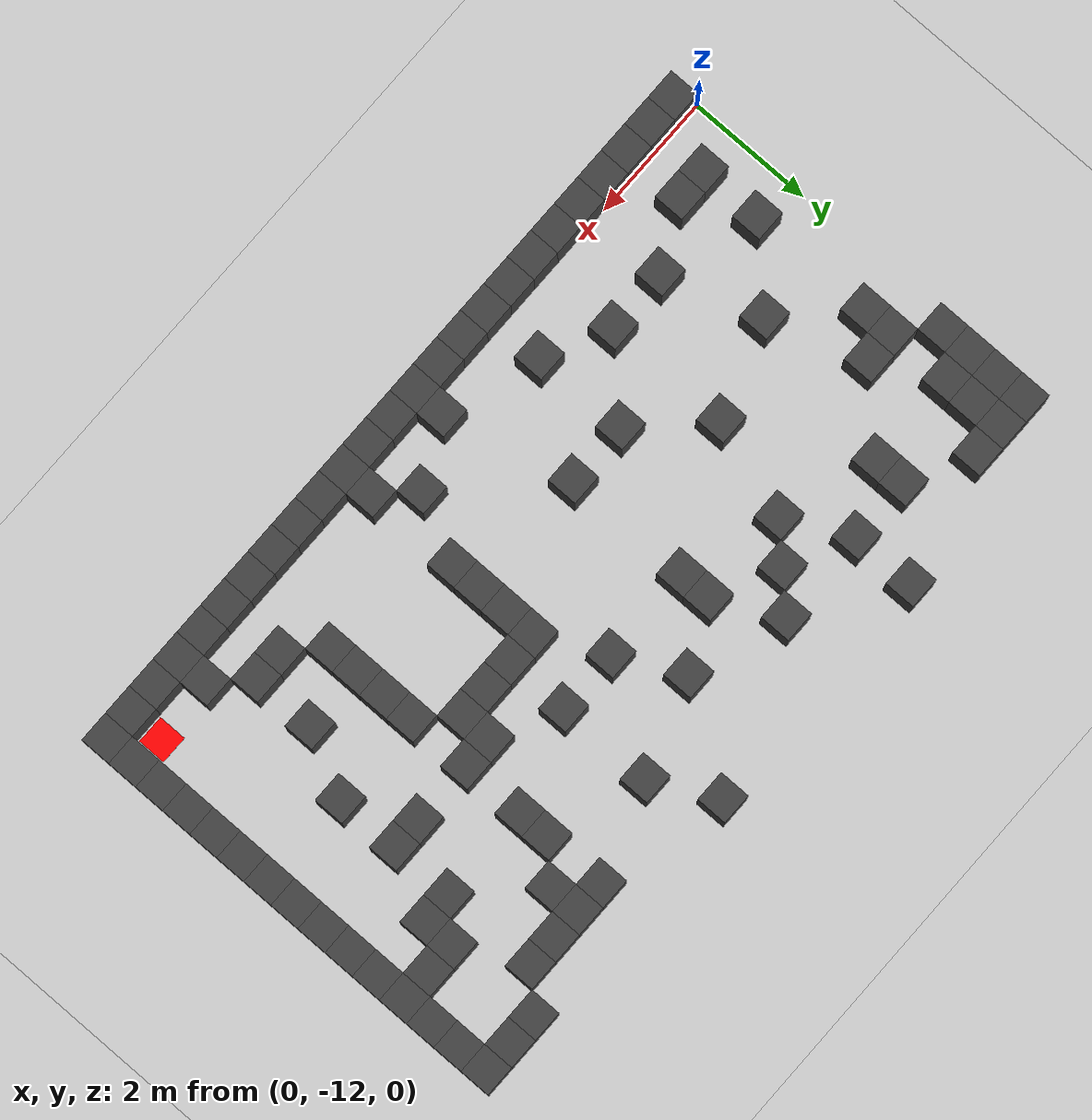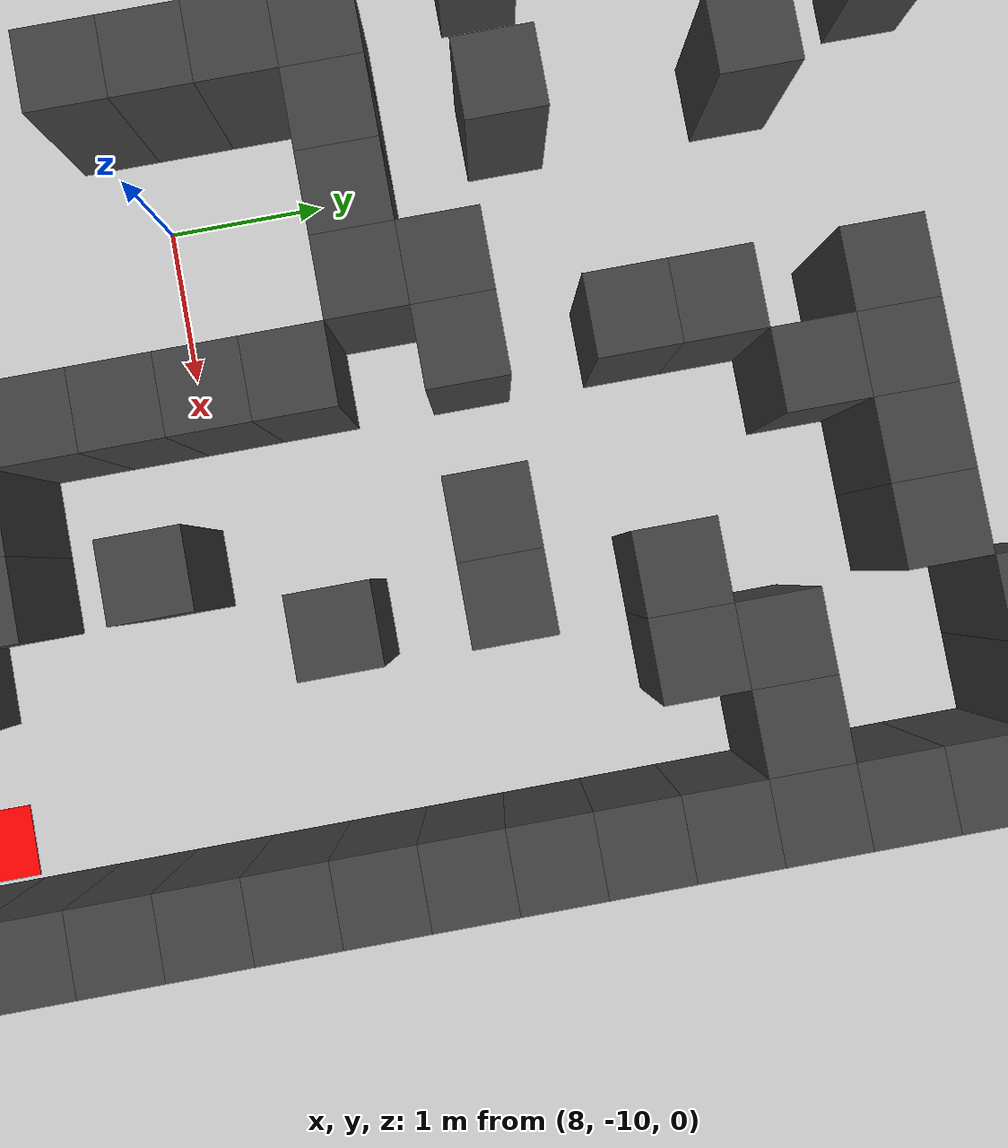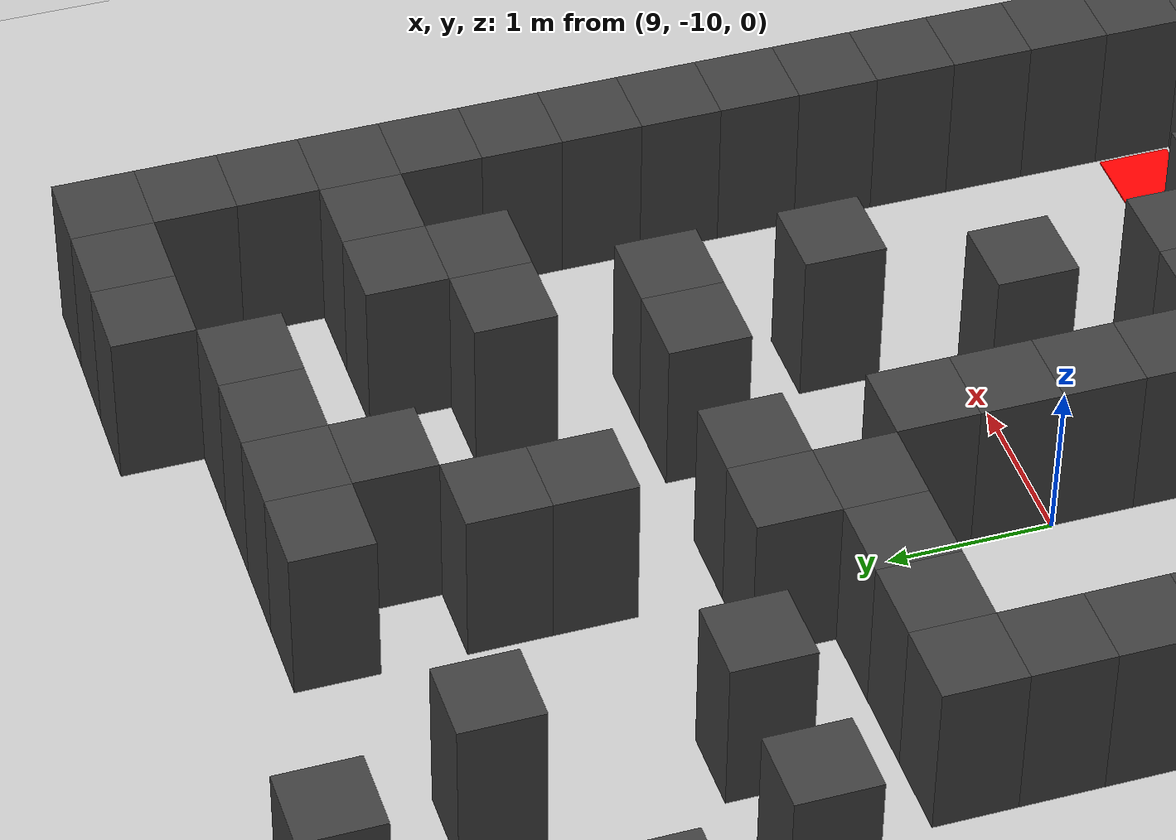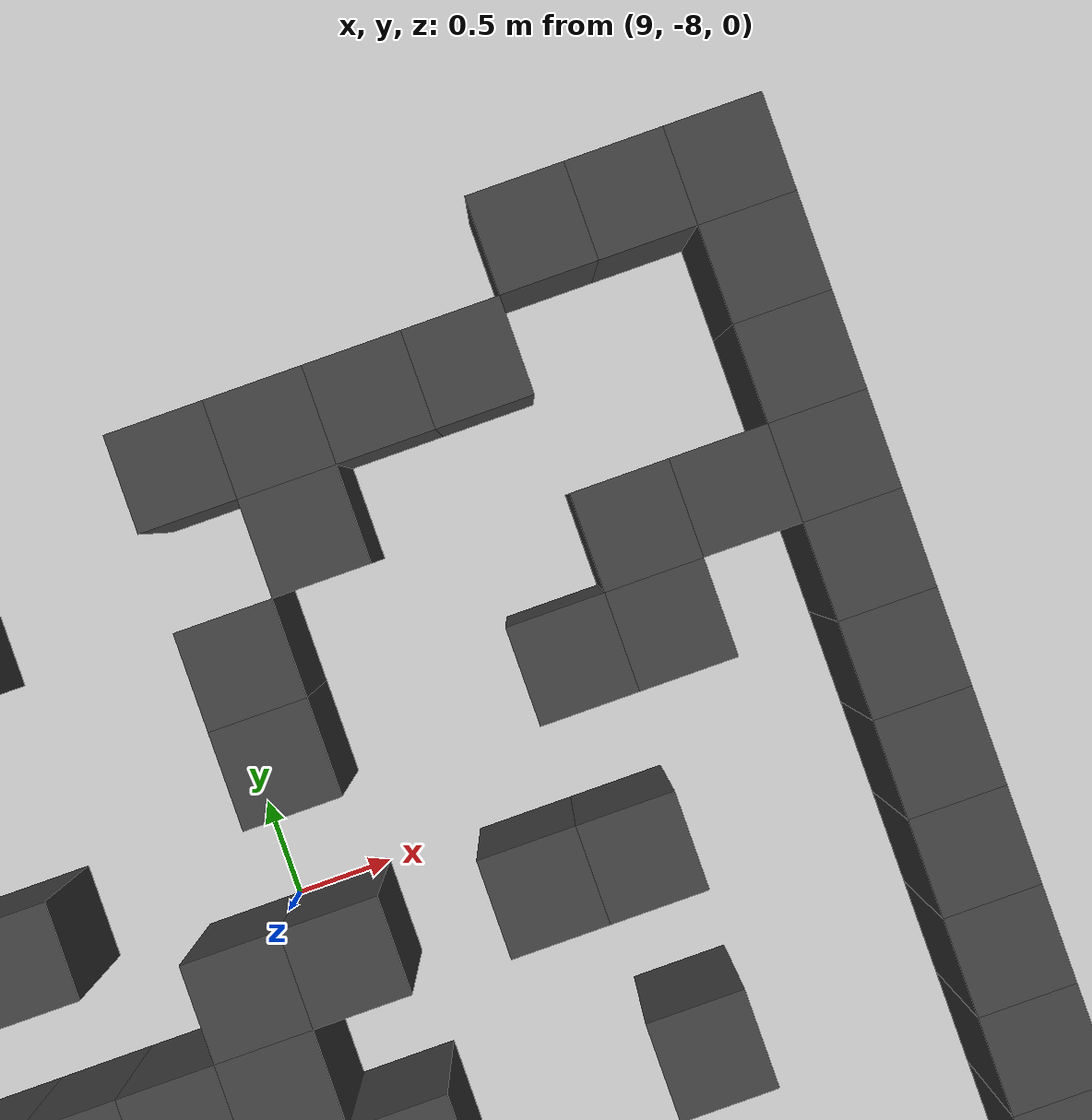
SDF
<sdf version="1.7">
 <world name="map_4226">
  <model name="ground_plane">
   <static>true</static>
   <link name="link">
    <collision name="collision">
     <geometry><plane><normal>0 0 1</normal><size>200 200</size></plane></geometry>
    </collision>
    <visual name="visual">
     <geometry><plane><normal>0 0 1</normal><size>200 200</size></plane></geometry>
     <material><ambient>0.8 0.8 0.8 1</ambient><diffuse>0.8 0.8 0.8 1</diffuse></material>
    </visual>
   </link>
  </model>
  <model name="maze_environment">
   <static>true</static>
   <link name="wall_453">
    <pose>3.250 -5.250 0.500 0 0 0</pose>
    <collision name="col"><geometry><box><size>0.5 0.5 1.0</size></box></geometry></collision>
    <visual name="vis">
     <geometry><box><size>0.5 0.5 1.0</size></box></geometry>
     <material><ambient>0.15 0.15 0.15 1</ambient><diffuse>0.25 0.25 0.25 1</diffuse></material>
    </visual>
   </link>
   <link name="wall_454">
    <pose>7.250 -5.250 0.500 0 0 0</pose>
    <collision name="col"><geometry><box><size>0.5 0.5 1.0</size></box></geometry></collision>
    <visual name="vis">
     <geometry><box><size>0.5 0.5 1.0</size></box></geometry>
     <material><ambient>0.15 0.15 0.15 1</ambient><diffuse>0.25 0.25 0.25 1</diffuse></material>
    </visual>
   </link>
   <link name="wall_455">
    <pose>11.250 -5.250 0.500 0 0 0</pose>
    <collision name="col"><geometry><box><size>0.5 0.5 1.0</size></box></geometry></collision>
    <visual name="vis">
     <geometry><box><size>0.5 0.5 1.0</size></box></geometry>
     <material><ambient>0.15 0.15 0.15 1</ambient><diffuse>0.25 0.25 0.25 1</diffuse></material>
    </visual>
   </link>
   <link name="wall_456">
    <pose>11.750 -5.250 0.500 0 0 0</pose>
    <collision name="col"><geometry><box><size>0.5 0.5 1.0</size></box></geometry></collision>
    <visual name="vis">
     <geometry><box><size>0.5 0.5 1.0</size></box></geometry>
     <material><ambient>0.15 0.15 0.15 1</ambient><diffuse>0.25 0.25 0.25 1</diffuse></material>
    </visual>
   </link>
   <link name="wall_457">
    <pose>12.250 -5.250 0.500 0 0 0</pose>
    <collision name="col"><geometry><box><size>0.5 0.5 1.0</size></box></geometry></collision>
    <visual name="vis">
     <geometry><box><size>0.5 0.5 1.0</size></box></geometry>
     <material><ambient>0.15 0.15 0.15 1</ambient><diffuse>0.25 0.25 0.25 1</diffuse></material>
    </visual>
   </link>
   <link name="wall_466">
    <pose>0.250 -5.750 0.500 0 0 0</pose>
    <collision name="col"><geometry><box><size>0.5 0.5 1.0</size></box></geometry></collision>
    <visual name="vis">
     <geometry><box><size>0.5 0.5 1.0</size></box></geometry>
     <material><ambient>0.15 0.15 0.15 1</ambient><diffuse>0.25 0.25 0.25 1</diffuse></material>
    </visual>
   </link>
   <link name="wall_467">
    <pose>0.750 -5.750 0.500 0 0 0</pose>
    <collision name="col"><geometry><box><size>0.5 0.5 1.0</size></box></geometry></collision>
    <visual name="vis">
     <geometry><box><size>0.5 0.5 1.0</size></box></geometry>
     <material><ambient>0.15 0.15 0.15 1</ambient><diffuse>0.25 0.25 0.25 1</diffuse></material>
    </visual>
   </link>
   <link name="wall_468">
    <pose>1.250 -5.750 0.500 0 0 0</pose>
    <collision name="col"><geometry><box><size>0.5 0.5 1.0</size></box></geometry></collision>
    <visual name="vis">
     <geometry><box><size>0.5 0.5 1.0</size></box></geometry>
     <material><ambient>0.15 0.15 0.15 1</ambient><diffuse>0.25 0.25 0.25 1</diffuse></material>
    </visual>
   </link>
   <link name="wall_469">
    <pose>9.250 -5.750 0.500 0 0 0</pose>
    <collision name="col"><geometry><box><size>0.5 0.5 1.0</size></box></geometry></collision>
    <visual name="vis">
     <geometry><box><size>0.5 0.5 1.0</size></box></geometry>
     <material><ambient>0.15 0.15 0.15 1</ambient><diffuse>0.25 0.25 0.25 1</diffuse></material>
    </visual>
   </link>
   <link name="wall_470">
    <pose>9.750 -5.750 0.500 0 0 0</pose>
    <collision name="col"><geometry><box><size>0.5 0.5 1.0</size></box></geometry></collision>
    <visual name="vis">
     <geometry><box><size>0.5 0.5 1.0</size></box></geometry>
     <material><ambient>0.15 0.15 0.15 1</ambient><diffuse>0.25 0.25 0.25 1</diffuse></material>
    </visual>
   </link>
   <link name="wall_471">
    <pose>10.250 -5.750 0.500 0 0 0</pose>
    <collision name="col"><geometry><box><size>0.5 0.5 1.0</size></box></geometry></collision>
    <visual name="vis">
     <geometry><box><size>0.5 0.5 1.0</size></box></geometry>
     <material><ambient>0.15 0.15 0.15 1</ambient><diffuse>0.25 0.25 0.25 1</diffuse></material>
    </visual>
   </link>
   <link name="wall_472">
    <pose>10.750 -5.750 0.500 0 0 0</pose>
    <collision name="col"><geometry><box><size>0.5 0.5 1.0</size></box></geometry></collision>
    <visual name="vis">
     <geometry><box><size>0.5 0.5 1.0</size></box></geometry>
     <material><ambient>0.15 0.15 0.15 1</ambient><diffuse>0.25 0.25 0.25 1</diffuse></material>
    </visual>
   </link>
   <link name="wall_473">
    <pose>12.250 -5.750 0.500 0 0 0</pose>
    <collision name="col"><geometry><box><size>0.5 0.5 1.0</size></box></geometry></collision>
    <visual name="vis">
     <geometry><box><size>0.5 0.5 1.0</size></box></geometry>
     <material><ambient>0.15 0.15 0.15 1</ambient><diffuse>0.25 0.25 0.25 1</diffuse></material>
    </visual>
   </link>
   <link name="wall_478">
    <pose>0.250 -6.250 0.500 0 0 0</pose>
    <collision name="col"><geometry><box><size>0.5 0.5 1.0</size></box></geometry></collision>
    <visual name="vis">
     <geometry><box><size>0.5 0.5 1.0</size></box></geometry>
     <material><ambient>0.15 0.15 0.15 1</ambient><diffuse>0.25 0.25 0.25 1</diffuse></material>
    </visual>
   </link>
   <link name="wall_479">
    <pose>0.750 -6.250 0.500 0 0 0</pose>
    <collision name="col"><geometry><box><size>0.5 0.5 1.0</size></box></geometry></collision>
    <visual name="vis">
     <geometry><box><size>0.5 0.5 1.0</size></box></geometry>
     <material><ambient>0.15 0.15 0.15 1</ambient><diffuse>0.25 0.25 0.25 1</diffuse></material>
    </visual>
   </link>
   <link name="wall_480">
    <pose>2.250 -6.250 0.500 0 0 0</pose>
    <collision name="col"><geometry><box><size>0.5 0.5 1.0</size></box></geometry></collision>
    <visual name="vis">
     <geometry><box><size>0.5 0.5 1.0</size></box></geometry>
     <material><ambient>0.15 0.15 0.15 1</ambient><diffuse>0.25 0.25 0.25 1</diffuse></material>
    </visual>
   </link>
   <link name="wall_481">
    <pose>3.250 -6.250 0.500 0 0 0</pose>
    <collision name="col"><geometry><box><size>0.5 0.5 1.0</size></box></geometry></collision>
    <visual name="vis">
     <geometry><box><size>0.5 0.5 1.0</size></box></geometry>
     <material><ambient>0.15 0.15 0.15 1</ambient><diffuse>0.25 0.25 0.25 1</diffuse></material>
    </visual>
   </link>
   <link name="wall_482">
    <pose>4.750 -6.250 0.500 0 0 0</pose>
    <collision name="col"><geometry><box><size>0.5 0.5 1.0</size></box></geometry></collision>
    <visual name="vis">
     <geometry><box><size>0.5 0.5 1.0</size></box></geometry>
     <material><ambient>0.15 0.15 0.15 1</ambient><diffuse>0.25 0.25 0.25 1</diffuse></material>
    </visual>
   </link>
   <link name="wall_483">
    <pose>7.750 -6.250 0.500 0 0 0</pose>
    <collision name="col"><geometry><box><size>0.5 0.5 1.0</size></box></geometry></collision>
    <visual name="vis">
     <geometry><box><size>0.5 0.5 1.0</size></box></geometry>
     <material><ambient>0.15 0.15 0.15 1</ambient><diffuse>0.25 0.25 0.25 1</diffuse></material>
    </visual>
   </link>
   <link name="wall_484">
    <pose>9.750 -6.250 0.500 0 0 0</pose>
    <collision name="col"><geometry><box><size>0.5 0.5 1.0</size></box></geometry></collision>
    <visual name="vis">
     <geometry><box><size>0.5 0.5 1.0</size></box></geometry>
     <material><ambient>0.15 0.15 0.15 1</ambient><diffuse>0.25 0.25 0.25 1</diffuse></material>
    </visual>
   </link>
   <link name="wall_485">
    <pose>12.250 -6.250 0.500 0 0 0</pose>
    <collision name="col"><geometry><box><size>0.5 0.5 1.0</size></box></geometry></collision>
    <visual name="vis">
     <geometry><box><size>0.5 0.5 1.0</size></box></geometry>
     <material><ambient>0.15 0.15 0.15 1</ambient><diffuse>0.25 0.25 0.25 1</diffuse></material>
    </visual>
   </link>
   <link name="wall_491">
    <pose>0.250 -6.750 0.500 0 0 0</pose>
    <collision name="col"><geometry><box><size>0.5 0.5 1.0</size></box></geometry></collision>
    <visual name="vis">
     <geometry><box><size>0.5 0.5 1.0</size></box></geometry>
     <material><ambient>0.15 0.15 0.15 1</ambient><diffuse>0.25 0.25 0.25 1</diffuse></material>
    </visual>
   </link>
   <link name="wall_492">
    <pose>0.750 -6.750 0.500 0 0 0</pose>
    <collision name="col"><geometry><box><size>0.5 0.5 1.0</size></box></geometry></collision>
    <visual name="vis">
     <geometry><box><size>0.5 0.5 1.0</size></box></geometry>
     <material><ambient>0.15 0.15 0.15 1</ambient><diffuse>0.25 0.25 0.25 1</diffuse></material>
    </visual>
   </link>
   <link name="wall_493">
    <pose>2.250 -6.750 0.500 0 0 0</pose>
    <collision name="col"><geometry><box><size>0.5 0.5 1.0</size></box></geometry></collision>
    <visual name="vis">
     <geometry><box><size>0.5 0.5 1.0</size></box></geometry>
     <material><ambient>0.15 0.15 0.15 1</ambient><diffuse>0.25 0.25 0.25 1</diffuse></material>
    </visual>
   </link>
   <link name="wall_494">
    <pose>4.250 -6.750 0.500 0 0 0</pose>
    <collision name="col"><geometry><box><size>0.5 0.5 1.0</size></box></geometry></collision>
    <visual name="vis">
     <geometry><box><size>0.5 0.5 1.0</size></box></geometry>
     <material><ambient>0.15 0.15 0.15 1</ambient><diffuse>0.25 0.25 0.25 1</diffuse></material>
    </visual>
   </link>
   <link name="wall_495">
    <pose>6.250 -6.750 0.500 0 0 0</pose>
    <collision name="col"><geometry><box><size>0.5 0.5 1.0</size></box></geometry></collision>
    <visual name="vis">
     <geometry><box><size>0.5 0.5 1.0</size></box></geometry>
     <material><ambient>0.15 0.15 0.15 1</ambient><diffuse>0.25 0.25 0.25 1</diffuse></material>
    </visual>
   </link>
   <link name="wall_496">
    <pose>9.250 -6.750 0.500 0 0 0</pose>
    <collision name="col"><geometry><box><size>0.5 0.5 1.0</size></box></geometry></collision>
    <visual name="vis">
     <geometry><box><size>0.5 0.5 1.0</size></box></geometry>
     <material><ambient>0.15 0.15 0.15 1</ambient><diffuse>0.25 0.25 0.25 1</diffuse></material>
    </visual>
   </link>
   <link name="wall_497">
    <pose>11.250 -6.750 0.500 0 0 0</pose>
    <collision name="col"><geometry><box><size>0.5 0.5 1.0</size></box></geometry></collision>
    <visual name="vis">
     <geometry><box><size>0.5 0.5 1.0</size></box></geometry>
     <material><ambient>0.15 0.15 0.15 1</ambient><diffuse>0.25 0.25 0.25 1</diffuse></material>
    </visual>
   </link>
   <link name="wall_498">
    <pose>11.750 -6.750 0.500 0 0 0</pose>
    <collision name="col"><geometry><box><size>0.5 0.5 1.0</size></box></geometry></collision>
    <visual name="vis">
     <geometry><box><size>0.5 0.5 1.0</size></box></geometry>
     <material><ambient>0.15 0.15 0.15 1</ambient><diffuse>0.25 0.25 0.25 1</diffuse></material>
    </visual>
   </link>
   <link name="wall_499">
    <pose>12.250 -6.750 0.500 0 0 0</pose>
    <collision name="col"><geometry><box><size>0.5 0.5 1.0</size></box></geometry></collision>
    <visual name="vis">
     <geometry><box><size>0.5 0.5 1.0</size></box></geometry>
     <material><ambient>0.15 0.15 0.15 1</ambient><diffuse>0.25 0.25 0.25 1</diffuse></material>
    </visual>
   </link>
   <link name="wall_507">
    <pose>0.250 -7.250 0.500 0 0 0</pose>
    <collision name="col"><geometry><box><size>0.5 0.5 1.0</size></box></geometry></collision>
    <visual name="vis">
     <geometry><box><size>0.5 0.5 1.0</size></box></geometry>
     <material><ambient>0.15 0.15 0.15 1</ambient><diffuse>0.25 0.25 0.25 1</diffuse></material>
    </visual>
   </link>
   <link name="wall_508">
    <pose>3.750 -7.250 0.500 0 0 0</pose>
    <collision name="col"><geometry><box><size>0.5 0.5 1.0</size></box></geometry></collision>
    <visual name="vis">
     <geometry><box><size>0.5 0.5 1.0</size></box></geometry>
     <material><ambient>0.15 0.15 0.15 1</ambient><diffuse>0.25 0.25 0.25 1</diffuse></material>
    </visual>
   </link>
   <link name="wall_509">
    <pose>5.250 -7.250 0.500 0 0 0</pose>
    <collision name="col"><geometry><box><size>0.5 0.5 1.0</size></box></geometry></collision>
    <visual name="vis">
     <geometry><box><size>0.5 0.5 1.0</size></box></geometry>
     <material><ambient>0.15 0.15 0.15 1</ambient><diffuse>0.25 0.25 0.25 1</diffuse></material>
    </visual>
   </link>
   <link name="wall_510">
    <pose>9.250 -7.250 0.500 0 0 0</pose>
    <collision name="col"><geometry><box><size>0.5 0.5 1.0</size></box></geometry></collision>
    <visual name="vis">
     <geometry><box><size>0.5 0.5 1.0</size></box></geometry>
     <material><ambient>0.15 0.15 0.15 1</ambient><diffuse>0.25 0.25 0.25 1</diffuse></material>
    </visual>
   </link>
   <link name="wall_511">
    <pose>10.750 -7.250 0.500 0 0 0</pose>
    <collision name="col"><geometry><box><size>0.5 0.5 1.0</size></box></geometry></collision>
    <visual name="vis">
     <geometry><box><size>0.5 0.5 1.0</size></box></geometry>
     <material><ambient>0.15 0.15 0.15 1</ambient><diffuse>0.25 0.25 0.25 1</diffuse></material>
    </visual>
   </link>
   <link name="wall_512">
    <pose>11.250 -7.250 0.500 0 0 0</pose>
    <collision name="col"><geometry><box><size>0.5 0.5 1.0</size></box></geometry></collision>
    <visual name="vis">
     <geometry><box><size>0.5 0.5 1.0</size></box></geometry>
     <material><ambient>0.15 0.15 0.15 1</ambient><diffuse>0.25 0.25 0.25 1</diffuse></material>
    </visual>
   </link>
   <link name="wall_513">
    <pose>12.250 -7.250 0.500 0 0 0</pose>
    <collision name="col"><geometry><box><size>0.5 0.5 1.0</size></box></geometry></collision>
    <visual name="vis">
     <geometry><box><size>0.5 0.5 1.0</size></box></geometry>
     <material><ambient>0.15 0.15 0.15 1</ambient><diffuse>0.25 0.25 0.25 1</diffuse></material>
    </visual>
   </link>
   <link name="wall_519">
    <pose>0.750 -7.750 0.500 0 0 0</pose>
    <collision name="col"><geometry><box><size>0.5 0.5 1.0</size></box></geometry></collision>
    <visual name="vis">
     <geometry><box><size>0.5 0.5 1.0</size></box></geometry>
     <material><ambient>0.15 0.15 0.15 1</ambient><diffuse>0.25 0.25 0.25 1</diffuse></material>
    </visual>
   </link>
   <link name="wall_520">
    <pose>1.250 -7.750 0.500 0 0 0</pose>
    <collision name="col"><geometry><box><size>0.5 0.5 1.0</size></box></geometry></collision>
    <visual name="vis">
     <geometry><box><size>0.5 0.5 1.0</size></box></geometry>
     <material><ambient>0.15 0.15 0.15 1</ambient><diffuse>0.25 0.25 0.25 1</diffuse></material>
    </visual>
   </link>
   <link name="wall_521">
    <pose>5.250 -7.750 0.500 0 0 0</pose>
    <collision name="col"><geometry><box><size>0.5 0.5 1.0</size></box></geometry></collision>
    <visual name="vis">
     <geometry><box><size>0.5 0.5 1.0</size></box></geometry>
     <material><ambient>0.15 0.15 0.15 1</ambient><diffuse>0.25 0.25 0.25 1</diffuse></material>
    </visual>
   </link>
   <link name="wall_522">
    <pose>6.750 -7.750 0.500 0 0 0</pose>
    <collision name="col"><geometry><box><size>0.5 0.5 1.0</size></box></geometry></collision>
    <visual name="vis">
     <geometry><box><size>0.5 0.5 1.0</size></box></geometry>
     <material><ambient>0.15 0.15 0.15 1</ambient><diffuse>0.25 0.25 0.25 1</diffuse></material>
    </visual>
   </link>
   <link name="wall_523">
    <pose>7.750 -7.750 0.500 0 0 0</pose>
    <collision name="col"><geometry><box><size>0.5 0.5 1.0</size></box></geometry></collision>
    <visual name="vis">
     <geometry><box><size>0.5 0.5 1.0</size></box></geometry>
     <material><ambient>0.15 0.15 0.15 1</ambient><diffuse>0.25 0.25 0.25 1</diffuse></material>
    </visual>
   </link>
   <link name="wall_524">
    <pose>12.250 -7.750 0.500 0 0 0</pose>
    <collision name="col"><geometry><box><size>0.5 0.5 1.0</size></box></geometry></collision>
    <visual name="vis">
     <geometry><box><size>0.5 0.5 1.0</size></box></geometry>
     <material><ambient>0.15 0.15 0.15 1</ambient><diffuse>0.25 0.25 0.25 1</diffuse></material>
    </visual>
   </link>
   <link name="wall_532">
    <pose>0.750 -8.250 0.500 0 0 0</pose>
    <collision name="col"><geometry><box><size>0.5 0.5 1.0</size></box></geometry></collision>
    <visual name="vis">
     <geometry><box><size>0.5 0.5 1.0</size></box></geometry>
     <material><ambient>0.15 0.15 0.15 1</ambient><diffuse>0.25 0.25 0.25 1</diffuse></material>
    </visual>
   </link>
   <link name="wall_533">
    <pose>8.750 -8.250 0.500 0 0 0</pose>
    <collision name="col"><geometry><box><size>0.5 0.5 1.0</size></box></geometry></collision>
    <visual name="vis">
     <geometry><box><size>0.5 0.5 1.0</size></box></geometry>
     <material><ambient>0.15 0.15 0.15 1</ambient><diffuse>0.25 0.25 0.25 1</diffuse></material>
    </visual>
   </link>
   <link name="wall_534">
    <pose>9.250 -8.250 0.500 0 0 0</pose>
    <collision name="col"><geometry><box><size>0.5 0.5 1.0</size></box></geometry></collision>
    <visual name="vis">
     <geometry><box><size>0.5 0.5 1.0</size></box></geometry>
     <material><ambient>0.15 0.15 0.15 1</ambient><diffuse>0.25 0.25 0.25 1</diffuse></material>
    </visual>
   </link>
   <link name="wall_535">
    <pose>10.250 -8.250 0.500 0 0 0</pose>
    <collision name="col"><geometry><box><size>0.5 0.5 1.0</size></box></geometry></collision>
    <visual name="vis">
     <geometry><box><size>0.5 0.5 1.0</size></box></geometry>
     <material><ambient>0.15 0.15 0.15 1</ambient><diffuse>0.25 0.25 0.25 1</diffuse></material>
    </visual>
   </link>
   <link name="wall_536">
    <pose>10.750 -8.250 0.500 0 0 0</pose>
    <collision name="col"><geometry><box><size>0.5 0.5 1.0</size></box></geometry></collision>
    <visual name="vis">
     <geometry><box><size>0.5 0.5 1.0</size></box></geometry>
     <material><ambient>0.15 0.15 0.15 1</ambient><diffuse>0.25 0.25 0.25 1</diffuse></material>
    </visual>
   </link>
   <link name="wall_537">
    <pose>12.250 -8.250 0.500 0 0 0</pose>
    <collision name="col"><geometry><box><size>0.5 0.5 1.0</size></box></geometry></collision>
    <visual name="vis">
     <geometry><box><size>0.5 0.5 1.0</size></box></geometry>
     <material><ambient>0.15 0.15 0.15 1</ambient><diffuse>0.25 0.25 0.25 1</diffuse></material>
    </visual>
   </link>
   <link name="wall_542">
    <pose>3.250 -8.750 0.500 0 0 0</pose>
    <collision name="col"><geometry><box><size>0.5 0.5 1.0</size></box></geometry></collision>
    <visual name="vis">
     <geometry><box><size>0.5 0.5 1.0</size></box></geometry>
     <material><ambient>0.15 0.15 0.15 1</ambient><diffuse>0.25 0.25 0.25 1</diffuse></material>
    </visual>
   </link>
   <link name="wall_543">
    <pose>7.250 -8.750 0.500 0 0 0</pose>
    <collision name="col"><geometry><box><size>0.5 0.5 1.0</size></box></geometry></collision>
    <visual name="vis">
     <geometry><box><size>0.5 0.5 1.0</size></box></geometry>
     <material><ambient>0.15 0.15 0.15 1</ambient><diffuse>0.25 0.25 0.25 1</diffuse></material>
    </visual>
   </link>
   <link name="wall_544">
    <pose>7.750 -8.750 0.500 0 0 0</pose>
    <collision name="col"><geometry><box><size>0.5 0.5 1.0</size></box></geometry></collision>
    <visual name="vis">
     <geometry><box><size>0.5 0.5 1.0</size></box></geometry>
     <material><ambient>0.15 0.15 0.15 1</ambient><diffuse>0.25 0.25 0.25 1</diffuse></material>
    </visual>
   </link>
   <link name="wall_545">
    <pose>8.250 -8.750 0.500 0 0 0</pose>
    <collision name="col"><geometry><box><size>0.5 0.5 1.0</size></box></geometry></collision>
    <visual name="vis">
     <geometry><box><size>0.5 0.5 1.0</size></box></geometry>
     <material><ambient>0.15 0.15 0.15 1</ambient><diffuse>0.25 0.25 0.25 1</diffuse></material>
    </visual>
   </link>
   <link name="wall_546">
    <pose>8.750 -8.750 0.500 0 0 0</pose>
    <collision name="col"><geometry><box><size>0.5 0.5 1.0</size></box></geometry></collision>
    <visual name="vis">
     <geometry><box><size>0.5 0.5 1.0</size></box></geometry>
     <material><ambient>0.15 0.15 0.15 1</ambient><diffuse>0.25 0.25 0.25 1</diffuse></material>
    </visual>
   </link>
   <link name="wall_547">
    <pose>12.250 -8.750 0.500 0 0 0</pose>
    <collision name="col"><geometry><box><size>0.5 0.5 1.0</size></box></geometry></collision>
    <visual name="vis">
     <geometry><box><size>0.5 0.5 1.0</size></box></geometry>
     <material><ambient>0.15 0.15 0.15 1</ambient><diffuse>0.25 0.25 0.25 1</diffuse></material>
    </visual>
   </link>
   <link name="wall_552">
    <pose>1.750 -9.250 0.500 0 0 0</pose>
    <collision name="col"><geometry><box><size>0.5 0.5 1.0</size></box></geometry></collision>
    <visual name="vis">
     <geometry><box><size>0.5 0.5 1.0</size></box></geometry>
     <material><ambient>0.15 0.15 0.15 1</ambient><diffuse>0.25 0.25 0.25 1</diffuse></material>
    </visual>
   </link>
   <link name="wall_553">
    <pose>7.250 -9.250 0.500 0 0 0</pose>
    <collision name="col"><geometry><box><size>0.5 0.5 1.0</size></box></geometry></collision>
    <visual name="vis">
     <geometry><box><size>0.5 0.5 1.0</size></box></geometry>
     <material><ambient>0.15 0.15 0.15 1</ambient><diffuse>0.25 0.25 0.25 1</diffuse></material>
    </visual>
   </link>
   <link name="wall_554">
    <pose>9.250 -9.250 0.500 0 0 0</pose>
    <collision name="col"><geometry><box><size>0.5 0.5 1.0</size></box></geometry></collision>
    <visual name="vis">
     <geometry><box><size>0.5 0.5 1.0</size></box></geometry>
     <material><ambient>0.15 0.15 0.15 1</ambient><diffuse>0.25 0.25 0.25 1</diffuse></material>
    </visual>
   </link>
   <link name="wall_555">
    <pose>10.750 -9.250 0.500 0 0 0</pose>
    <collision name="col"><geometry><box><size>0.5 0.5 1.0</size></box></geometry></collision>
    <visual name="vis">
     <geometry><box><size>0.5 0.5 1.0</size></box></geometry>
     <material><ambient>0.15 0.15 0.15 1</ambient><diffuse>0.25 0.25 0.25 1</diffuse></material>
    </visual>
   </link>
   <link name="wall_556">
    <pose>12.250 -9.250 0.500 0 0 0</pose>
    <collision name="col"><geometry><box><size>0.5 0.5 1.0</size></box></geometry></collision>
    <visual name="vis">
     <geometry><box><size>0.5 0.5 1.0</size></box></geometry>
     <material><ambient>0.15 0.15 0.15 1</ambient><diffuse>0.25 0.25 0.25 1</diffuse></material>
    </visual>
   </link>
   <link name="wall_562">
    <pose>4.250 -9.750 0.500 0 0 0</pose>
    <collision name="col"><geometry><box><size>0.5 0.5 1.0</size></box></geometry></collision>
    <visual name="vis">
     <geometry><box><size>0.5 0.5 1.0</size></box></geometry>
     <material><ambient>0.15 0.15 0.15 1</ambient><diffuse>0.25 0.25 0.25 1</diffuse></material>
    </visual>
   </link>
   <link name="wall_563">
    <pose>5.250 -9.750 0.500 0 0 0</pose>
    <collision name="col"><geometry><box><size>0.5 0.5 1.0</size></box></geometry></collision>
    <visual name="vis">
     <geometry><box><size>0.5 0.5 1.0</size></box></geometry>
     <material><ambient>0.15 0.15 0.15 1</ambient><diffuse>0.25 0.25 0.25 1</diffuse></material>
    </visual>
   </link>
   <link name="wall_564">
    <pose>7.250 -9.750 0.500 0 0 0</pose>
    <collision name="col"><geometry><box><size>0.5 0.5 1.0</size></box></geometry></collision>
    <visual name="vis">
     <geometry><box><size>0.5 0.5 1.0</size></box></geometry>
     <material><ambient>0.15 0.15 0.15 1</ambient><diffuse>0.25 0.25 0.25 1</diffuse></material>
    </visual>
   </link>
   <link name="wall_565">
    <pose>9.250 -9.750 0.500 0 0 0</pose>
    <collision name="col"><geometry><box><size>0.5 0.5 1.0</size></box></geometry></collision>
    <visual name="vis">
     <geometry><box><size>0.5 0.5 1.0</size></box></geometry>
     <material><ambient>0.15 0.15 0.15 1</ambient><diffuse>0.25 0.25 0.25 1</diffuse></material>
    </visual>
   </link>
   <link name="wall_566">
    <pose>12.250 -9.750 0.500 0 0 0</pose>
    <collision name="col"><geometry><box><size>0.5 0.5 1.0</size></box></geometry></collision>
    <visual name="vis">
     <geometry><box><size>0.5 0.5 1.0</size></box></geometry>
     <material><ambient>0.15 0.15 0.15 1</ambient><diffuse>0.25 0.25 0.25 1</diffuse></material>
    </visual>
   </link>
   <link name="wall_575">
    <pose>0.750 -10.250 0.500 0 0 0</pose>
    <collision name="col"><geometry><box><size>0.5 0.5 1.0</size></box></geometry></collision>
    <visual name="vis">
     <geometry><box><size>0.5 0.5 1.0</size></box></geometry>
     <material><ambient>0.15 0.15 0.15 1</ambient><diffuse>0.25 0.25 0.25 1</diffuse></material>
    </visual>
   </link>
   <link name="wall_576">
    <pose>7.250 -10.250 0.500 0 0 0</pose>
    <collision name="col"><geometry><box><size>0.5 0.5 1.0</size></box></geometry></collision>
    <visual name="vis">
     <geometry><box><size>0.5 0.5 1.0</size></box></geometry>
     <material><ambient>0.15 0.15 0.15 1</ambient><diffuse>0.25 0.25 0.25 1</diffuse></material>
    </visual>
   </link>
   <link name="wall_577">
    <pose>9.250 -10.250 0.500 0 0 0</pose>
    <collision name="col"><geometry><box><size>0.5 0.5 1.0</size></box></geometry></collision>
    <visual name="vis">
     <geometry><box><size>0.5 0.5 1.0</size></box></geometry>
     <material><ambient>0.15 0.15 0.15 1</ambient><diffuse>0.25 0.25 0.25 1</diffuse></material>
    </visual>
   </link>
   <link name="wall_578">
    <pose>10.250 -10.250 0.500 0 0 0</pose>
    <collision name="col"><geometry><box><size>0.5 0.5 1.0</size></box></geometry></collision>
    <visual name="vis">
     <geometry><box><size>0.5 0.5 1.0</size></box></geometry>
     <material><ambient>0.15 0.15 0.15 1</ambient><diffuse>0.25 0.25 0.25 1</diffuse></material>
    </visual>
   </link>
   <link name="wall_579">
    <pose>12.250 -10.250 0.500 0 0 0</pose>
    <collision name="col"><geometry><box><size>0.5 0.5 1.0</size></box></geometry></collision>
    <visual name="vis">
     <geometry><box><size>0.5 0.5 1.0</size></box></geometry>
     <material><ambient>0.15 0.15 0.15 1</ambient><diffuse>0.25 0.25 0.25 1</diffuse></material>
    </visual>
   </link>
   <link name="wall_588">
    <pose>2.250 -10.750 0.500 0 0 0</pose>
    <collision name="col"><geometry><box><size>0.5 0.5 1.0</size></box></geometry></collision>
    <visual name="vis">
     <geometry><box><size>0.5 0.5 1.0</size></box></geometry>
     <material><ambient>0.15 0.15 0.15 1</ambient><diffuse>0.25 0.25 0.25 1</diffuse></material>
    </visual>
   </link>
   <link name="wall_589">
    <pose>3.250 -10.750 0.500 0 0 0</pose>
    <collision name="col"><geometry><box><size>0.5 0.5 1.0</size></box></geometry></collision>
    <visual name="vis">
     <geometry><box><size>0.5 0.5 1.0</size></box></geometry>
     <material><ambient>0.15 0.15 0.15 1</ambient><diffuse>0.25 0.25 0.25 1</diffuse></material>
    </visual>
   </link>
   <link name="wall_590">
    <pose>9.250 -10.750 0.500 0 0 0</pose>
    <collision name="col"><geometry><box><size>0.5 0.5 1.0</size></box></geometry></collision>
    <visual name="vis">
     <geometry><box><size>0.5 0.5 1.0</size></box></geometry>
     <material><ambient>0.15 0.15 0.15 1</ambient><diffuse>0.25 0.25 0.25 1</diffuse></material>
    </visual>
   </link>
   <link name="wall_591">
    <pose>12.250 -10.750 0.500 0 0 0</pose>
    <collision name="col"><geometry><box><size>0.5 0.5 1.0</size></box></geometry></collision>
    <visual name="vis">
     <geometry><box><size>0.5 0.5 1.0</size></box></geometry>
     <material><ambient>0.15 0.15 0.15 1</ambient><diffuse>0.25 0.25 0.25 1</diffuse></material>
    </visual>
   </link>
   <link name="wall_598">
    <pose>0.750 -11.250 0.500 0 0 0</pose>
    <collision name="col"><geometry><box><size>0.5 0.5 1.0</size></box></geometry></collision>
    <visual name="vis">
     <geometry><box><size>0.5 0.5 1.0</size></box></geometry>
     <material><ambient>0.15 0.15 0.15 1</ambient><diffuse>0.25 0.25 0.25 1</diffuse></material>
    </visual>
   </link>
   <link name="wall_599">
    <pose>1.250 -11.250 0.500 0 0 0</pose>
    <collision name="col"><geometry><box><size>0.5 0.5 1.0</size></box></geometry></collision>
    <visual name="vis">
     <geometry><box><size>0.5 0.5 1.0</size></box></geometry>
     <material><ambient>0.15 0.15 0.15 1</ambient><diffuse>0.25 0.25 0.25 1</diffuse></material>
    </visual>
   </link>
   <link name="wall_600">
    <pose>4.250 -11.250 0.500 0 0 0</pose>
    <collision name="col"><geometry><box><size>0.5 0.5 1.0</size></box></geometry></collision>
    <visual name="vis">
     <geometry><box><size>0.5 0.5 1.0</size></box></geometry>
     <material><ambient>0.15 0.15 0.15 1</ambient><diffuse>0.25 0.25 0.25 1</diffuse></material>
    </visual>
   </link>
   <link name="wall_601">
    <pose>6.750 -11.250 0.500 0 0 0</pose>
    <collision name="col"><geometry><box><size>0.5 0.5 1.0</size></box></geometry></collision>
    <visual name="vis">
     <geometry><box><size>0.5 0.5 1.0</size></box></geometry>
     <material><ambient>0.15 0.15 0.15 1</ambient><diffuse>0.25 0.25 0.25 1</diffuse></material>
    </visual>
   </link>
   <link name="wall_602">
    <pose>9.750 -11.250 0.500 0 0 0</pose>
    <collision name="col"><geometry><box><size>0.5 0.5 1.0</size></box></geometry></collision>
    <visual name="vis">
     <geometry><box><size>0.5 0.5 1.0</size></box></geometry>
     <material><ambient>0.15 0.15 0.15 1</ambient><diffuse>0.25 0.25 0.25 1</diffuse></material>
    </visual>
   </link>
   <link name="wall_603">
    <pose>10.250 -11.250 0.500 0 0 0</pose>
    <collision name="col"><geometry><box><size>0.5 0.5 1.0</size></box></geometry></collision>
    <visual name="vis">
     <geometry><box><size>0.5 0.5 1.0</size></box></geometry>
     <material><ambient>0.15 0.15 0.15 1</ambient><diffuse>0.25 0.25 0.25 1</diffuse></material>
    </visual>
   </link>
   <link name="wall_604">
    <pose>12.250 -11.250 0.500 0 0 0</pose>
    <collision name="col"><geometry><box><size>0.5 0.5 1.0</size></box></geometry></collision>
    <visual name="vis">
     <geometry><box><size>0.5 0.5 1.0</size></box></geometry>
     <material><ambient>0.15 0.15 0.15 1</ambient><diffuse>0.25 0.25 0.25 1</diffuse></material>
    </visual>
   </link>
   <link name="wall_612">
    <pose>5.750 -11.750 0.500 0 0 0</pose>
    <collision name="col"><geometry><box><size>0.5 0.5 1.0</size></box></geometry></collision>
    <visual name="vis">
     <geometry><box><size>0.5 0.5 1.0</size></box></geometry>
     <material><ambient>0.15 0.15 0.15 1</ambient><diffuse>0.25 0.25 0.25 1</diffuse></material>
    </visual>
   </link>
   <link name="wall_613">
    <pose>7.250 -11.750 0.500 0 0 0</pose>
    <collision name="col"><geometry><box><size>0.5 0.5 1.0</size></box></geometry></collision>
    <visual name="vis">
     <geometry><box><size>0.5 0.5 1.0</size></box></geometry>
     <material><ambient>0.15 0.15 0.15 1</ambient><diffuse>0.25 0.25 0.25 1</diffuse></material>
    </visual>
   </link>
   <link name="wall_614">
    <pose>10.750 -11.750 0.500 0 0 0</pose>
    <collision name="col"><geometry><box><size>0.5 0.5 1.0</size></box></geometry></collision>
    <visual name="vis">
     <geometry><box><size>0.5 0.5 1.0</size></box></geometry>
     <material><ambient>0.15 0.15 0.15 1</ambient><diffuse>0.25 0.25 0.25 1</diffuse></material>
    </visual>
   </link>
   <link name="wall_615">
    <pose>12.250 -11.750 0.500 0 0 0</pose>
    <collision name="col"><geometry><box><size>0.5 0.5 1.0</size></box></geometry></collision>
    <visual name="vis">
     <geometry><box><size>0.5 0.5 1.0</size></box></geometry>
     <material><ambient>0.15 0.15 0.15 1</ambient><diffuse>0.25 0.25 0.25 1</diffuse></material>
    </visual>
   </link>
   <link name="wall_641">
    <pose>0.250 -12.250 0.500 0 0 0</pose>
    <collision name="col"><geometry><box><size>0.5 0.5 1.0</size></box></geometry></collision>
    <visual name="vis">
     <geometry><box><size>0.5 0.5 1.0</size></box></geometry>
     <material><ambient>0.15 0.15 0.15 1</ambient><diffuse>0.25 0.25 0.25 1</diffuse></material>
    </visual>
   </link>
   <link name="wall_642">
    <pose>0.750 -12.250 0.500 0 0 0</pose>
    <collision name="col"><geometry><box><size>0.5 0.5 1.0</size></box></geometry></collision>
    <visual name="vis">
     <geometry><box><size>0.5 0.5 1.0</size></box></geometry>
     <material><ambient>0.15 0.15 0.15 1</ambient><diffuse>0.25 0.25 0.25 1</diffuse></material>
    </visual>
   </link>
   <link name="wall_643">
    <pose>1.250 -12.250 0.500 0 0 0</pose>
    <collision name="col"><geometry><box><size>0.5 0.5 1.0</size></box></geometry></collision>
    <visual name="vis">
     <geometry><box><size>0.5 0.5 1.0</size></box></geometry>
     <material><ambient>0.15 0.15 0.15 1</ambient><diffuse>0.25 0.25 0.25 1</diffuse></material>
    </visual>
   </link>
   <link name="wall_644">
    <pose>1.750 -12.250 0.500 0 0 0</pose>
    <collision name="col"><geometry><box><size>0.5 0.5 1.0</size></box></geometry></collision>
    <visual name="vis">
     <geometry><box><size>0.5 0.5 1.0</size></box></geometry>
     <material><ambient>0.15 0.15 0.15 1</ambient><diffuse>0.25 0.25 0.25 1</diffuse></material>
    </visual>
   </link>
   <link name="wall_645">
    <pose>2.250 -12.250 0.500 0 0 0</pose>
    <collision name="col"><geometry><box><size>0.5 0.5 1.0</size></box></geometry></collision>
    <visual name="vis">
     <geometry><box><size>0.5 0.5 1.0</size></box></geometry>
     <material><ambient>0.15 0.15 0.15 1</ambient><diffuse>0.25 0.25 0.25 1</diffuse></material>
    </visual>
   </link>
   <link name="wall_646">
    <pose>2.750 -12.250 0.500 0 0 0</pose>
    <collision name="col"><geometry><box><size>0.5 0.5 1.0</size></box></geometry></collision>
    <visual name="vis">
     <geometry><box><size>0.5 0.5 1.0</size></box></geometry>
     <material><ambient>0.15 0.15 0.15 1</ambient><diffuse>0.25 0.25 0.25 1</diffuse></material>
    </visual>
   </link>
   <link name="wall_647">
    <pose>3.250 -12.250 0.500 0 0 0</pose>
    <collision name="col"><geometry><box><size>0.5 0.5 1.0</size></box></geometry></collision>
    <visual name="vis">
     <geometry><box><size>0.5 0.5 1.0</size></box></geometry>
     <material><ambient>0.15 0.15 0.15 1</ambient><diffuse>0.25 0.25 0.25 1</diffuse></material>
    </visual>
   </link>
   <link name="wall_648">
    <pose>3.750 -12.250 0.500 0 0 0</pose>
    <collision name="col"><geometry><box><size>0.5 0.5 1.0</size></box></geometry></collision>
    <visual name="vis">
     <geometry><box><size>0.5 0.5 1.0</size></box></geometry>
     <material><ambient>0.15 0.15 0.15 1</ambient><diffuse>0.25 0.25 0.25 1</diffuse></material>
    </visual>
   </link>
   <link name="wall_649">
    <pose>4.250 -12.250 0.500 0 0 0</pose>
    <collision name="col"><geometry><box><size>0.5 0.5 1.0</size></box></geometry></collision>
    <visual name="vis">
     <geometry><box><size>0.5 0.5 1.0</size></box></geometry>
     <material><ambient>0.15 0.15 0.15 1</ambient><diffuse>0.25 0.25 0.25 1</diffuse></material>
    </visual>
   </link>
   <link name="wall_650">
    <pose>4.750 -12.250 0.500 0 0 0</pose>
    <collision name="col"><geometry><box><size>0.5 0.5 1.0</size></box></geometry></collision>
    <visual name="vis">
     <geometry><box><size>0.5 0.5 1.0</size></box></geometry>
     <material><ambient>0.15 0.15 0.15 1</ambient><diffuse>0.25 0.25 0.25 1</diffuse></material>
    </visual>
   </link>
   <link name="wall_651">
    <pose>5.250 -12.250 0.500 0 0 0</pose>
    <collision name="col"><geometry><box><size>0.5 0.5 1.0</size></box></geometry></collision>
    <visual name="vis">
     <geometry><box><size>0.5 0.5 1.0</size></box></geometry>
     <material><ambient>0.15 0.15 0.15 1</ambient><diffuse>0.25 0.25 0.25 1</diffuse></material>
    </visual>
   </link>
   <link name="wall_652">
    <pose>5.750 -12.250 0.500 0 0 0</pose>
    <collision name="col"><geometry><box><size>0.5 0.5 1.0</size></box></geometry></collision>
    <visual name="vis">
     <geometry><box><size>0.5 0.5 1.0</size></box></geometry>
     <material><ambient>0.15 0.15 0.15 1</ambient><diffuse>0.25 0.25 0.25 1</diffuse></material>
    </visual>
   </link>
   <link name="wall_653">
    <pose>6.250 -12.250 0.500 0 0 0</pose>
    <collision name="col"><geometry><box><size>0.5 0.5 1.0</size></box></geometry></collision>
    <visual name="vis">
     <geometry><box><size>0.5 0.5 1.0</size></box></geometry>
     <material><ambient>0.15 0.15 0.15 1</ambient><diffuse>0.25 0.25 0.25 1</diffuse></material>
    </visual>
   </link>
   <link name="wall_654">
    <pose>6.750 -12.250 0.500 0 0 0</pose>
    <collision name="col"><geometry><box><size>0.5 0.5 1.0</size></box></geometry></collision>
    <visual name="vis">
     <geometry><box><size>0.5 0.5 1.0</size></box></geometry>
     <material><ambient>0.15 0.15 0.15 1</ambient><diffuse>0.25 0.25 0.25 1</diffuse></material>
    </visual>
   </link>
   <link name="wall_655">
    <pose>7.250 -12.250 0.500 0 0 0</pose>
    <collision name="col"><geometry><box><size>0.5 0.5 1.0</size></box></geometry></collision>
    <visual name="vis">
     <geometry><box><size>0.5 0.5 1.0</size></box></geometry>
     <material><ambient>0.15 0.15 0.15 1</ambient><diffuse>0.25 0.25 0.25 1</diffuse></material>
    </visual>
   </link>
   <link name="wall_656">
    <pose>7.750 -12.250 0.500 0 0 0</pose>
    <collision name="col"><geometry><box><size>0.5 0.5 1.0</size></box></geometry></collision>
    <visual name="vis">
     <geometry><box><size>0.5 0.5 1.0</size></box></geometry>
     <material><ambient>0.15 0.15 0.15 1</ambient><diffuse>0.25 0.25 0.25 1</diffuse></material>
    </visual>
   </link>
   <link name="wall_657">
    <pose>8.250 -12.250 0.500 0 0 0</pose>
    <collision name="col"><geometry><box><size>0.5 0.5 1.0</size></box></geometry></collision>
    <visual name="vis">
     <geometry><box><size>0.5 0.5 1.0</size></box></geometry>
     <material><ambient>0.15 0.15 0.15 1</ambient><diffuse>0.25 0.25 0.25 1</diffuse></material>
    </visual>
   </link>
   <link name="wall_658">
    <pose>8.750 -12.250 0.500 0 0 0</pose>
    <collision name="col"><geometry><box><size>0.5 0.5 1.0</size></box></geometry></collision>
    <visual name="vis">
     <geometry><box><size>0.5 0.5 1.0</size></box></geometry>
     <material><ambient>0.15 0.15 0.15 1</ambient><diffuse>0.25 0.25 0.25 1</diffuse></material>
    </visual>
   </link>
   <link name="wall_659">
    <pose>9.250 -12.250 0.500 0 0 0</pose>
    <collision name="col"><geometry><box><size>0.5 0.5 1.0</size></box></geometry></collision>
    <visual name="vis">
     <geometry><box><size>0.5 0.5 1.0</size></box></geometry>
     <material><ambient>0.15 0.15 0.15 1</ambient><diffuse>0.25 0.25 0.25 1</diffuse></material>
    </visual>
   </link>
   <link name="wall_660">
    <pose>9.750 -12.250 0.500 0 0 0</pose>
    <collision name="col"><geometry><box><size>0.5 0.5 1.0</size></box></geometry></collision>
    <visual name="vis">
     <geometry><box><size>0.5 0.5 1.0</size></box></geometry>
     <material><ambient>0.15 0.15 0.15 1</ambient><diffuse>0.25 0.25 0.25 1</diffuse></material>
    </visual>
   </link>
   <link name="wall_661">
    <pose>10.250 -12.250 0.500 0 0 0</pose>
    <collision name="col"><geometry><box><size>0.5 0.5 1.0</size></box></geometry></collision>
    <visual name="vis">
     <geometry><box><size>0.5 0.5 1.0</size></box></geometry>
     <material><ambient>0.15 0.15 0.15 1</ambient><diffuse>0.25 0.25 0.25 1</diffuse></material>
    </visual>
   </link>
   <link name="wall_662">
    <pose>10.750 -12.250 0.500 0 0 0</pose>
    <collision name="col"><geometry><box><size>0.5 0.5 1.0</size></box></geometry></collision>
    <visual name="vis">
     <geometry><box><size>0.5 0.5 1.0</size></box></geometry>
     <material><ambient>0.15 0.15 0.15 1</ambient><diffuse>0.25 0.25 0.25 1</diffuse></material>
    </visual>
   </link>
   <link name="wall_663">
    <pose>11.250 -12.250 0.500 0 0 0</pose>
    <collision name="col"><geometry><box><size>0.5 0.5 1.0</size></box></geometry></collision>
    <visual name="vis">
     <geometry><box><size>0.5 0.5 1.0</size></box></geometry>
     <material><ambient>0.15 0.15 0.15 1</ambient><diffuse>0.25 0.25 0.25 1</diffuse></material>
    </visual>
   </link>
   <link name="wall_664">
    <pose>11.750 -12.250 0.500 0 0 0</pose>
    <collision name="col"><geometry><box><size>0.5 0.5 1.0</size></box></geometry></collision>
    <visual name="vis">
     <geometry><box><size>0.5 0.5 1.0</size></box></geometry>
     <material><ambient>0.15 0.15 0.15 1</ambient><diffuse>0.25 0.25 0.25 1</diffuse></material>
    </visual>
   </link>
   <link name="wall_665">
    <pose>12.250 -12.250 0.500 0 0 0</pose>
    <collision name="col"><geometry><box><size>0.5 0.5 1.0</size></box></geometry></collision>
    <visual name="vis">
     <geometry><box><size>0.5 0.5 1.0</size></box></geometry>
     <material><ambient>0.15 0.15 0.15 1</ambient><diffuse>0.25 0.25 0.25 1</diffuse></material>
    </visual>
   </link>
   <link name="goal_zone">
    <pose>11.750 -11.750 0.005 0 0 0</pose>
    <visual name="vis">
     <geometry><box><size>0.45 0.45 0.01</size></box></geometry>
     <material>
      <ambient>1.0 0.0 0.0 1</ambient>
      <diffuse>1.0 0.0 0.0 1</diffuse>
      <emissive>0.60 0.00 0.00 1</emissive>
     </material>
    </visual>
   </link>
  </model>
 </world>
</sdf>
